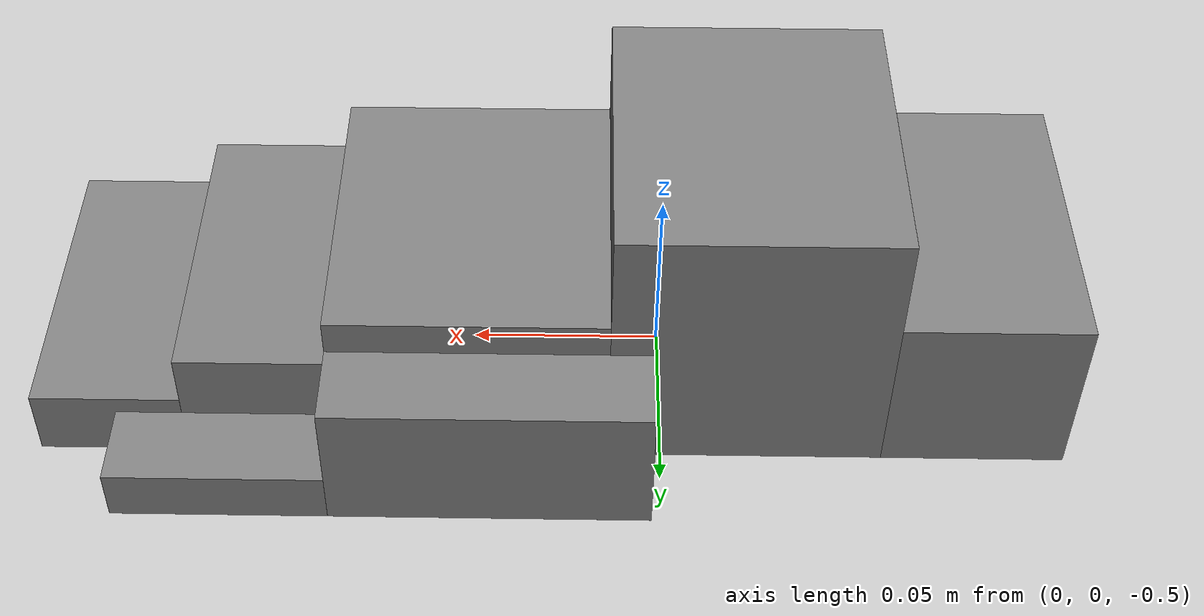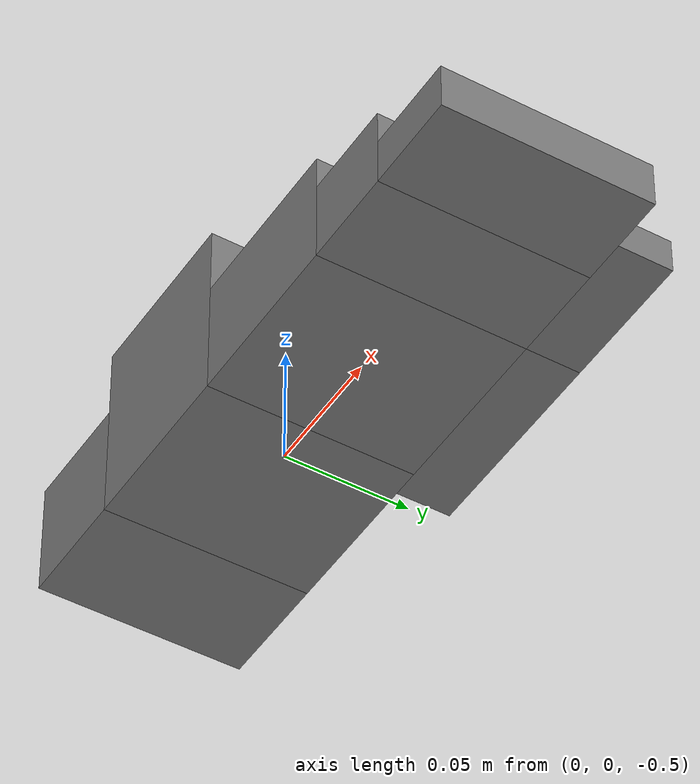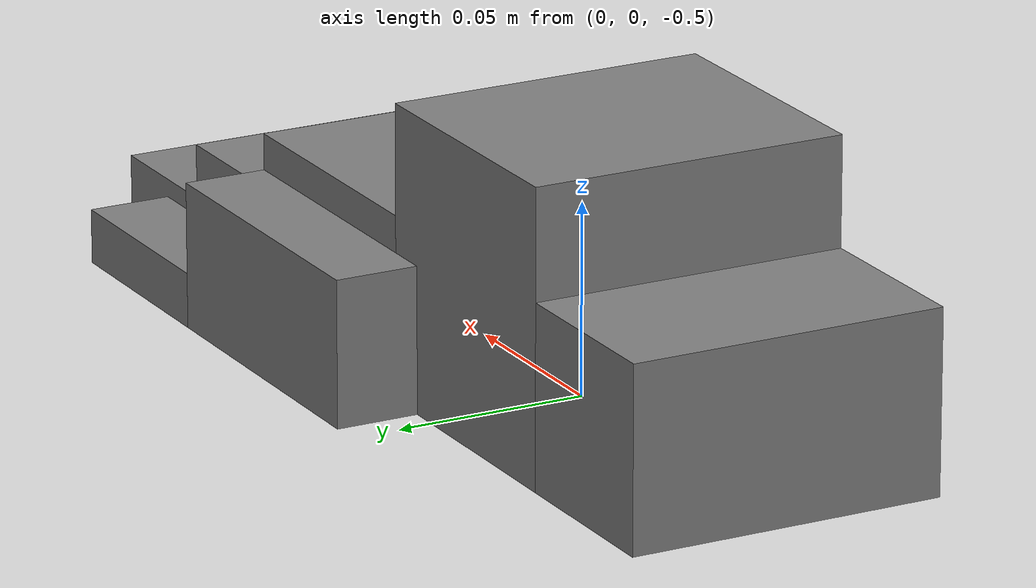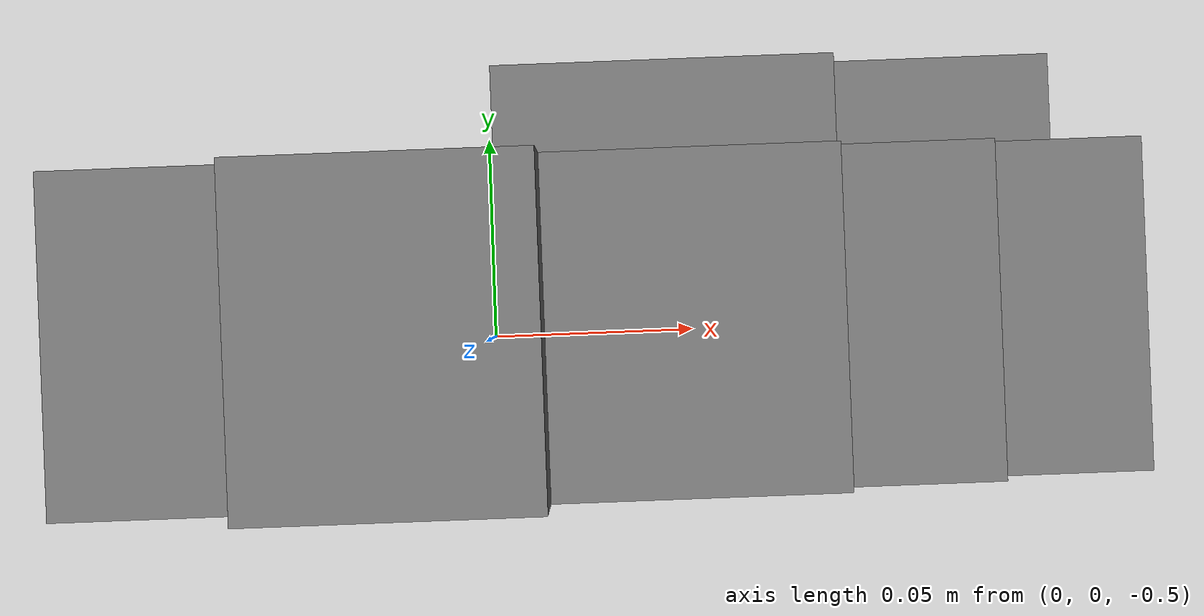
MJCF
<mujoco model="humanoid">

  <statistic extent="2" center="0 0 1"/>

  <option timestep="0.00555"/>

  <default>
    <motor ctrlrange="-1 1" ctrllimited="true"/>
    <default class="body">
      <geom type="capsule" condim="1" friction="0 0 0.0" solimp=".9 .99 .003" solref=".015 1"/>
      <joint type="hinge" damping="0.1" stiffness="5" armature=".007" limited="true" solimplimit="0 .99 .01"/>
      <site size=".04" group="3"/>
      <default class="force-torque">
        <site type="box" size=".01 .01 .02" rgba="1 0 0 1" />
      </default>
      <default class="touch">
        <site type="capsule" rgba="0 0 1 .3"/>
      </default>
    </default>
  </default>

  <worldbody>

     <body name="L_Ankle" pos="-0.0374 -0.0148 -0.4269" quat="1.0000 0.0000 0.0000 0.0000">
            <body name="L_Toe" pos="0.122 0.0411 -0.0603" quat="1.0000 0.0000 0.0000 0.0000">
              <geom type="box" pos="0.01923798955976963 -0.023720128577947613 0.0059500679254532035" size="0.019238 0.04124 0.016609" quat="0 0 0 1" contype="0" conaffinity="1" density="1000"/>
              <geom type="box" pos="0.05771396867930889 -0.023720128577947613 -0.0011680409431457303" size="0.019238 0.04124 0.009491" quat="0 0 0 1" contype="0" conaffinity="1" density="1000"/>
            </body>
            <geom size="0.0355 0.04124 0.037963" type="box" pos="0.0155 0.017379871422052384 -0.03299560546875" quat="0 0 0 1" contype="0" conaffinity="1" density="1000"/>
            <geom type="box" pos="0.0865 0.017379871422052384 -0.047231823205947876" size="0.0355 0.04124 0.023727" quat="0 0 0 1" contype="0" conaffinity="1" density="1000"/>
            <body name="L_Toe_1" pos="0.04 0.05862 -0.026178" quat="1.0000 0.0000 0.0000 0.0000">
              <geom type="box" pos="0.040999999999999995 0.010800586229562759 -0.025799019622802753" size="0.041 0.010801 0.018982" quat="0 0 0 1" contype="0" conaffinity="1" density="1000"/>
              <body name="L_Toe_1_1" pos="0.082 0 -0.034122" quat="1.0000 0.0000 0.0000 0.0000">
                <geom type="box" pos="0.027713968679308892 0.010800586229562759 -0.003540743899345375" size="0.027714 0.010801 0.007118" quat="0 0 0 1" contype="0" conaffinity="1" density="1000"/>
              </body>
            </body>
            <body name="L_Toe_2" pos="-0.02 0.01738 -0.0603" quat="1.0000 0.0000 0.0000 0.0000">
              <geom type="box" pos="-0.023619716763496397 0 0.013068176794052144" size="0.02362 0.04124 0.023727" quat="0 0 0 1" contype="0" conaffinity="1" density="1000"/>
            </body>
          </body>
  </worldbody>

</mujoco>
